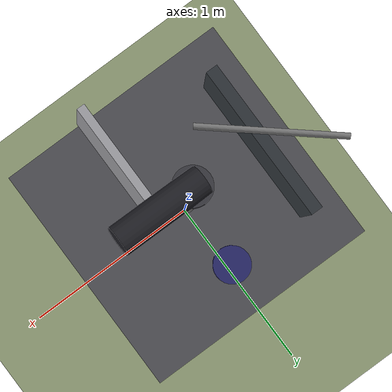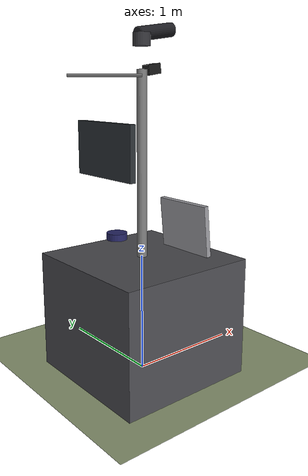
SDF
<?xml version="1.0" encoding="UTF-8"?>
<sdf version="1.9">
  <world name="detection_world">
    <physics type="ode">
      <max_step_size>0.004</max_step_size>
      <real_time_factor>1.0</real_time_factor>
      <real_time_update_rate>250</real_time_update_rate>
    </physics>
    <gravity>0 0 -9.8</gravity>
    <magnetic_field>6e-06 2.3e-05 -4.2e-05</magnetic_field>
    <atmosphere type="adiabatic"/>

    <plugin filename="gz-sim-physics-system" name="gz::sim::systems::Physics"/>
    <plugin filename="gz-sim-user-commands-system" name="gz::sim::systems::UserCommands"/>
    <plugin filename="gz-sim-scene-broadcaster-system" name="gz::sim::systems::SceneBroadcaster"/>
    <plugin filename="gz-sim-sensors-system" name="gz::sim::systems::Sensors">
      <render_engine>ogre2</render_engine>
    </plugin>
    <plugin filename="gz-sim-imu-system" name="gz::sim::systems::Imu"/>
    <plugin filename="gz-sim-magnetometer-system" name="gz::sim::systems::Magnetometer"/>
    <plugin filename="gz-sim-air-pressure-system" name="gz::sim::systems::AirPressure"/>
    <plugin filename="gz-sim-navsat-system" name="gz::sim::systems::NavSat"/>

    <scene>
      <grid>false</grid>
      <ambient>0.4 0.4 0.4 1</ambient>
      <background>0.55 0.7 0.9 1</background>
      <shadows>true</shadows>
    </scene>

    <light name="sunUTC" type="directional">
      <pose>0 0 500 0 -0 0</pose>
      <cast_shadows>true</cast_shadows>
      <intensity>1</intensity>
      <direction>0.001 0.625 -0.78</direction>
      <diffuse>0.904 0.904 0.904 1</diffuse>
      <specular>0.271 0.271 0.271 1</specular>
      <attenuation>
        <range>2000</range>
        <linear>0</linear>
        <constant>1</constant>
        <quadratic>0</quadratic>
      </attenuation>
    </light>

    <model name="ground_plane">
      <static>true</static>
      <link name="link">
        <collision name="collision">
          <geometry>
            <plane>
              <normal>0 0 1</normal>
              <size>1 1</size>
            </plane>
          </geometry>
        </collision>
        <visual name="visual">
          <geometry>
            <plane>
              <normal>0 0 1</normal>
              <size>800 800</size>
            </plane>
          </geometry>
          <material>
            <ambient>0.55 0.6 0.45 1</ambient>
            <diffuse>0.55 0.6 0.45 1</diffuse>
            <specular>0.1 0.1 0.1 1</specular>
          </material>
        </visual>
      </link>
    </model>

    <!-- ============ Fixed ground detection station ============ -->
    <model name="detection_station">
      <static>true</static>
      <pose>0 0 0 0 0 0</pose>

      <!-- equipment cabin -->
      <link name="base">
        <pose>0 0 0.5 0 0 0</pose>
        <visual name="cabin">
          <geometry><box><size>1.2 1.2 1.0</size></box></geometry>
          <material>
            <ambient>0.3 0.3 0.32 1</ambient>
            <diffuse>0.3 0.3 0.32 1</diffuse>
          </material>
        </visual>
        <collision name="cabin_col">
          <geometry><box><size>1.2 1.2 1.0</size></box></geometry>
        </collision>
      </link>

      <!-- sensor mast -->
      <link name="mast">
        <pose>0 0 1.75 0 0 0</pose>
        <visual name="pole">
          <geometry><cylinder><radius>0.04</radius><length>1.5</length></cylinder></geometry>
          <material>
            <ambient>0.5 0.5 0.5 1</ambient>
            <diffuse>0.5 0.5 0.5 1</diffuse>
          </material>
        </visual>
      </link>

      <!-- CAMERA: 2.5 m up, looking EAST (+X), pitched 8.6 deg up.
           720p @ 15 Hz keeps CPU/RAM sane on this machine; raise later if needed. -->
      <link name="camera_link">
        <pose>0.1 0 2.5 0 -0.15 0</pose>
        <visual name="camera_body">
          <geometry><box><size>0.12 0.08 0.08</size></box></geometry>
          <material>
            <ambient>0.1 0.1 0.1 1</ambient>
            <diffuse>0.1 0.1 0.1 1</diffuse>
          </material>
        </visual>
        <sensor name="station_camera" type="camera">
          <topic>/detection_station/camera/image</topic>
          <update_rate>15</update_rate>
          <always_on>true</always_on>
          <visualize>false</visualize>
          <camera>
            <horizontal_fov>1.047</horizontal_fov>
            <image>
              <width>1280</width>
              <height>720</height>
              <format>R8G8B8</format>
            </image>
            <clip>
              <near>0.1</near>
              <far>1000</far>
            </clip>
            <camera_info_topic>/detection_station/camera/camera_info</camera_info_topic>
          </camera>
        </sensor>
      </link>

      <!-- MICROPHONE ARRAY mount (pose marker only — Gazebo has no acoustics;
           Phase 3 synthesizes audio from sim state relative to this pose). -->
      <link name="mic_array_link">
        <pose>0 0.35 1.1 0 0 0</pose>
        <visual name="mic_array">
          <geometry><cylinder><radius>0.09</radius><length>0.06</length></cylinder></geometry>
          <material>
            <ambient>0.15 0.15 0.4 1</ambient>
            <diffuse>0.15 0.15 0.4 1</diffuse>
          </material>
        </visual>
      </link>

      <!-- CUED TELEPHOTO on a pan-tilt head. The 6 deg lens sees 1% of the
           wide field and only works because it is pointed, so the head is
           part of the design rather than decoration. -->
      <link name="gimbal_link">
        <pose>0 0 2.72 0 0 0</pose>
        <visual name="yoke">
          <geometry><cylinder><radius>0.07</radius><length>0.10</length></cylinder></geometry>
          <material>
            <ambient>0.22 0.22 0.24 1</ambient>
            <diffuse>0.22 0.22 0.24 1</diffuse>
          </material>
        </visual>
      </link>
      <link name="tele_barrel">
        <pose>0.13 0 2.78 0 -0.15 0</pose>
        <visual name="barrel">
          <pose>0 0 0 0 1.5708 0</pose>
          <geometry><cylinder><radius>0.055</radius><length>0.34</length></cylinder></geometry>
          <material>
            <ambient>0.12 0.12 0.14 1</ambient>
            <diffuse>0.12 0.12 0.14 1</diffuse>
          </material>
        </visual>
      </link>

      <link name="pcl_panel">
        <pose>-0.35 0 1.90 0 0 3.1416</pose>
        <visual name="panel">
          <geometry><box><size>0.05 0.67 0.42</size></box></geometry>
          <material>
            <ambient>0.18 0.20 0.22 1</ambient>
            <diffuse>0.18 0.20 0.22 1</diffuse>
          </material>
        </visual>
      </link>
      <link name="pcl_reference">
        <pose>-0.35 0 2.45 0 0 2.44</pose>
        <visual name="boom">
          <pose>0 0 0 0 1.5708 0</pose>
          <geometry><cylinder><radius>0.012</radius><length>0.55</length></cylinder></geometry>
          <material>
            <ambient>0.45 0.45 0.45 1</ambient>
            <diffuse>0.45 0.45 0.45 1</diffuse>
          </material>
        </visual>
      </link>

      <!-- RADAR panel mount (pose marker only — Phase 4 computes returns from
           ground-truth kinematics relative to this pose, plus a noise model). -->
      <link name="radar_link">
        <pose>0.15 -0.35 1.3 0 -0.1 0</pose>
        <visual name="radar_panel">
          <geometry><box><size>0.04 0.5 0.4</size></box></geometry>
          <material>
            <ambient>0.6 0.6 0.62 1</ambient>
            <diffuse>0.6 0.6 0.62 1</diffuse>
          </material>
        </visual>
      </link>
    </model>

    <!-- PX4 default reference location (Zurich Irchel) — keep identical to
         PX4's own worlds so GPS init behaves exactly like stock setups. -->
    <spherical_coordinates>
      <surface_model>EARTH_WGS84</surface_model>
      <world_frame_orientation>ENU</world_frame_orientation>
      <latitude_deg>47.397971057728974</latitude_deg>
      <longitude_deg>8.546163739800146</longitude_deg>
      <elevation>0</elevation>
    </spherical_coordinates>
  </world>
</sdf>
